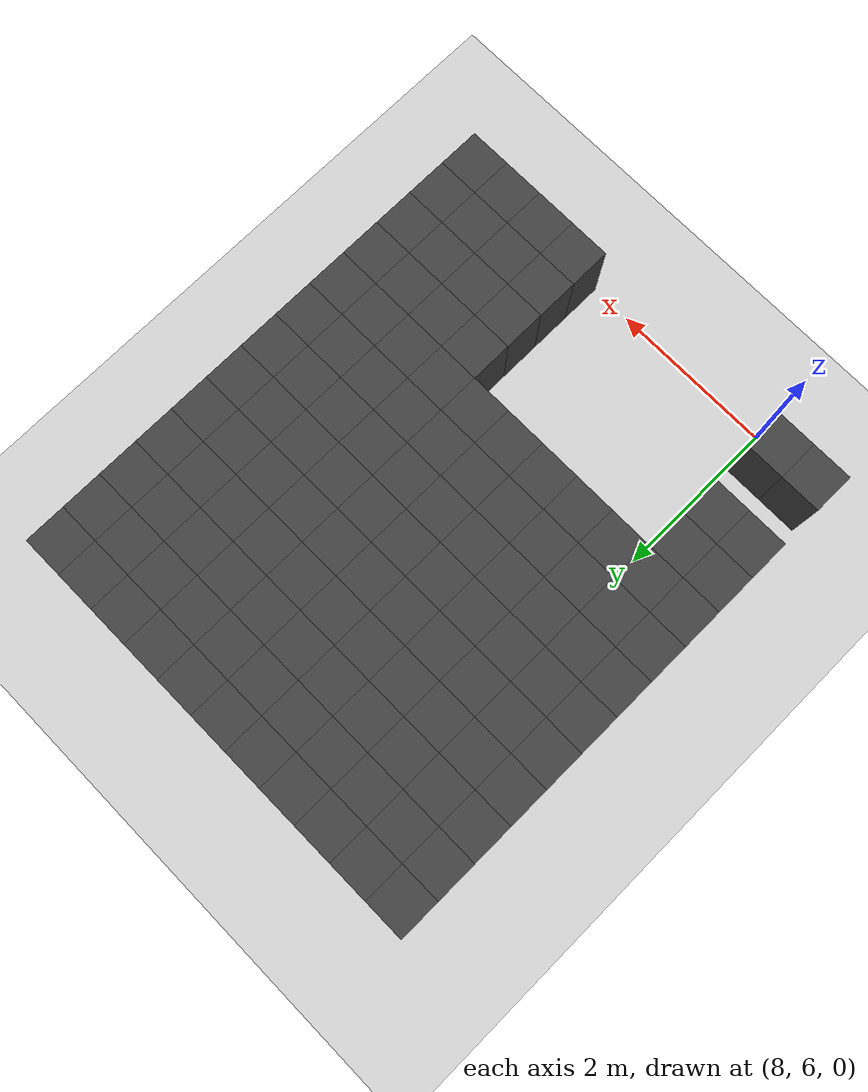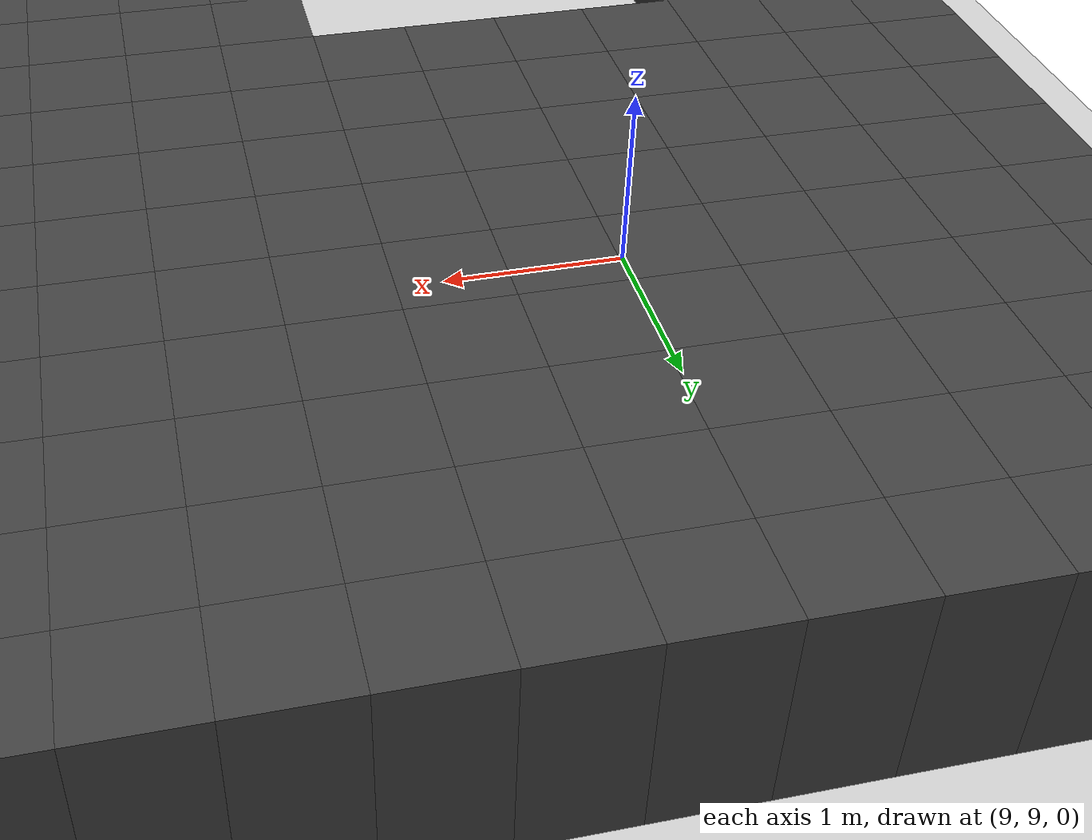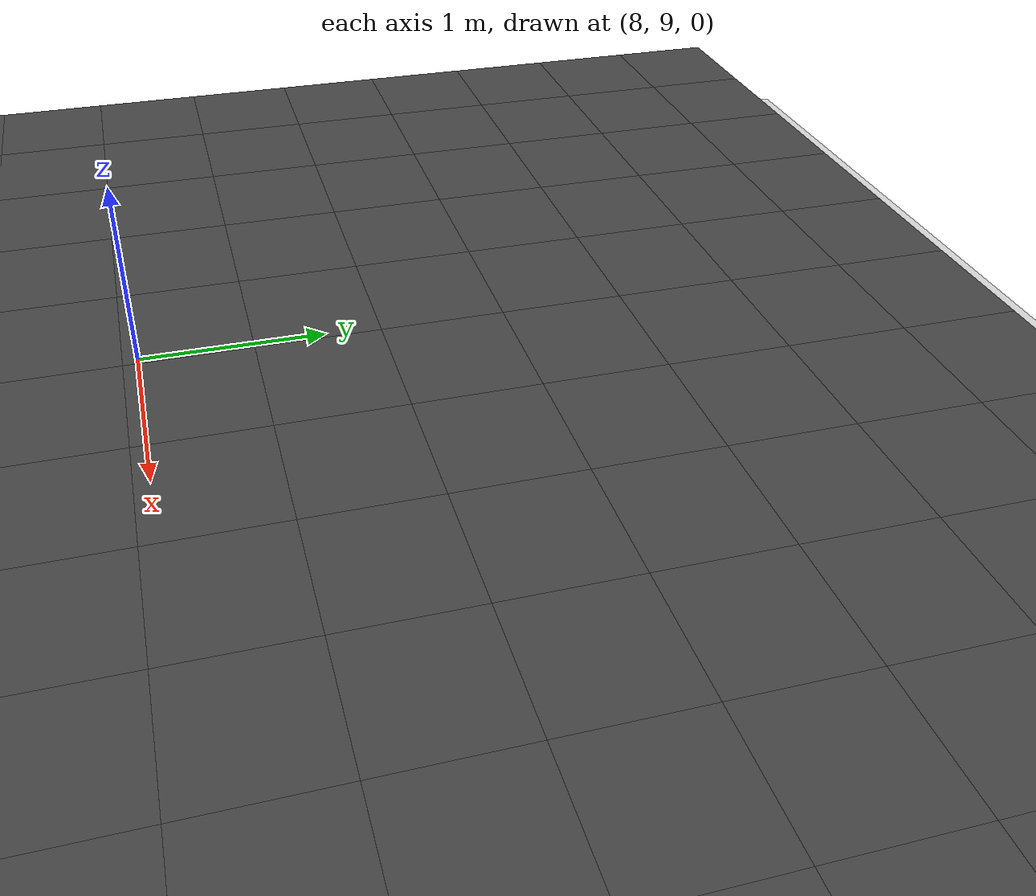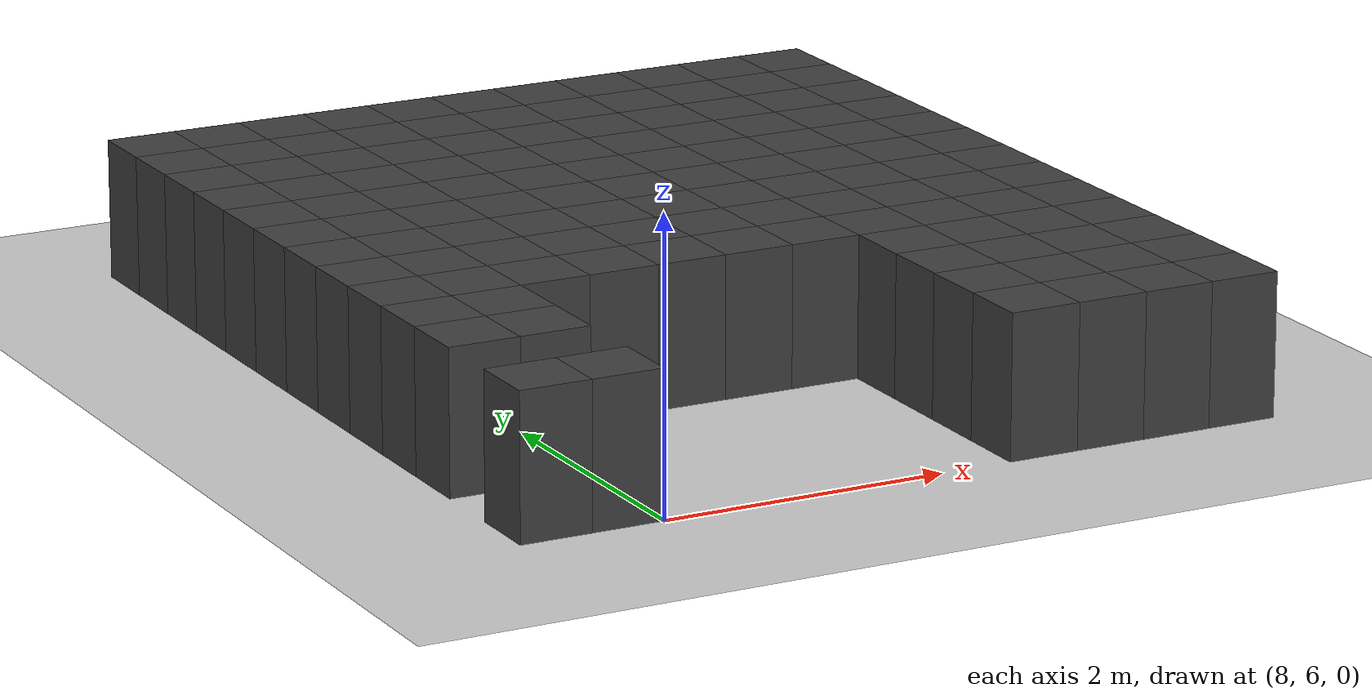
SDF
<sdf version="1.7">
 <world name="map_14510">
  <model name="ground_plane">
   <static>true</static>
   <link name="link">
    <collision name="collision">
     <geometry><plane><normal>0 0 1</normal><size>200 200</size></plane></geometry>
    </collision>
    <visual name="visual">
     <geometry><plane><normal>0 0 1</normal><size>200 200</size></plane></geometry>
     <material><ambient>0.8 0.8 0.8 1</ambient><diffuse>0.8 0.8 0.8 1</diffuse></material>
    </visual>
   </link>
  </model>
  <model name="maze_environment">
   <static>true</static>
   <link name="wall_39">
    <pose>7.250 12.250 0.500 0 0 0</pose>
    <collision name="col"><geometry><box><size>0.5 0.5 1.0</size></box></geometry></collision>
    <visual name="vis">
     <geometry><box><size>0.5 0.5 1.0</size></box></geometry>
     <material><ambient>0.15 0.15 0.15 1</ambient><diffuse>0.25 0.25 0.25 1</diffuse></material>
    </visual>
   </link>
   <link name="wall_40">
    <pose>7.750 12.250 0.500 0 0 0</pose>
    <collision name="col"><geometry><box><size>0.5 0.5 1.0</size></box></geometry></collision>
    <visual name="vis">
     <geometry><box><size>0.5 0.5 1.0</size></box></geometry>
     <material><ambient>0.15 0.15 0.15 1</ambient><diffuse>0.25 0.25 0.25 1</diffuse></material>
    </visual>
   </link>
   <link name="wall_41">
    <pose>8.250 12.250 0.500 0 0 0</pose>
    <collision name="col"><geometry><box><size>0.5 0.5 1.0</size></box></geometry></collision>
    <visual name="vis">
     <geometry><box><size>0.5 0.5 1.0</size></box></geometry>
     <material><ambient>0.15 0.15 0.15 1</ambient><diffuse>0.25 0.25 0.25 1</diffuse></material>
    </visual>
   </link>
   <link name="wall_42">
    <pose>8.750 12.250 0.500 0 0 0</pose>
    <collision name="col"><geometry><box><size>0.5 0.5 1.0</size></box></geometry></collision>
    <visual name="vis">
     <geometry><box><size>0.5 0.5 1.0</size></box></geometry>
     <material><ambient>0.15 0.15 0.15 1</ambient><diffuse>0.25 0.25 0.25 1</diffuse></material>
    </visual>
   </link>
   <link name="wall_43">
    <pose>9.250 12.250 0.500 0 0 0</pose>
    <collision name="col"><geometry><box><size>0.5 0.5 1.0</size></box></geometry></collision>
    <visual name="vis">
     <geometry><box><size>0.5 0.5 1.0</size></box></geometry>
     <material><ambient>0.15 0.15 0.15 1</ambient><diffuse>0.25 0.25 0.25 1</diffuse></material>
    </visual>
   </link>
   <link name="wall_44">
    <pose>9.750 12.250 0.500 0 0 0</pose>
    <collision name="col"><geometry><box><size>0.5 0.5 1.0</size></box></geometry></collision>
    <visual name="vis">
     <geometry><box><size>0.5 0.5 1.0</size></box></geometry>
     <material><ambient>0.15 0.15 0.15 1</ambient><diffuse>0.25 0.25 0.25 1</diffuse></material>
    </visual>
   </link>
   <link name="wall_45">
    <pose>10.250 12.250 0.500 0 0 0</pose>
    <collision name="col"><geometry><box><size>0.5 0.5 1.0</size></box></geometry></collision>
    <visual name="vis">
     <geometry><box><size>0.5 0.5 1.0</size></box></geometry>
     <material><ambient>0.15 0.15 0.15 1</ambient><diffuse>0.25 0.25 0.25 1</diffuse></material>
    </visual>
   </link>
   <link name="wall_46">
    <pose>10.750 12.250 0.500 0 0 0</pose>
    <collision name="col"><geometry><box><size>0.5 0.5 1.0</size></box></geometry></collision>
    <visual name="vis">
     <geometry><box><size>0.5 0.5 1.0</size></box></geometry>
     <material><ambient>0.15 0.15 0.15 1</ambient><diffuse>0.25 0.25 0.25 1</diffuse></material>
    </visual>
   </link>
   <link name="wall_47">
    <pose>11.250 12.250 0.500 0 0 0</pose>
    <collision name="col"><geometry><box><size>0.5 0.5 1.0</size></box></geometry></collision>
    <visual name="vis">
     <geometry><box><size>0.5 0.5 1.0</size></box></geometry>
     <material><ambient>0.15 0.15 0.15 1</ambient><diffuse>0.25 0.25 0.25 1</diffuse></material>
    </visual>
   </link>
   <link name="wall_48">
    <pose>11.750 12.250 0.500 0 0 0</pose>
    <collision name="col"><geometry><box><size>0.5 0.5 1.0</size></box></geometry></collision>
    <visual name="vis">
     <geometry><box><size>0.5 0.5 1.0</size></box></geometry>
     <material><ambient>0.15 0.15 0.15 1</ambient><diffuse>0.25 0.25 0.25 1</diffuse></material>
    </visual>
   </link>
   <link name="wall_49">
    <pose>12.250 12.250 0.500 0 0 0</pose>
    <collision name="col"><geometry><box><size>0.5 0.5 1.0</size></box></geometry></collision>
    <visual name="vis">
     <geometry><box><size>0.5 0.5 1.0</size></box></geometry>
     <material><ambient>0.15 0.15 0.15 1</ambient><diffuse>0.25 0.25 0.25 1</diffuse></material>
    </visual>
   </link>
   <link name="wall_86">
    <pose>7.250 11.750 0.500 0 0 0</pose>
    <collision name="col"><geometry><box><size>0.5 0.5 1.0</size></box></geometry></collision>
    <visual name="vis">
     <geometry><box><size>0.5 0.5 1.0</size></box></geometry>
     <material><ambient>0.15 0.15 0.15 1</ambient><diffuse>0.25 0.25 0.25 1</diffuse></material>
    </visual>
   </link>
   <link name="wall_87">
    <pose>7.750 11.750 0.500 0 0 0</pose>
    <collision name="col"><geometry><box><size>0.5 0.5 1.0</size></box></geometry></collision>
    <visual name="vis">
     <geometry><box><size>0.5 0.5 1.0</size></box></geometry>
     <material><ambient>0.15 0.15 0.15 1</ambient><diffuse>0.25 0.25 0.25 1</diffuse></material>
    </visual>
   </link>
   <link name="wall_88">
    <pose>8.250 11.750 0.500 0 0 0</pose>
    <collision name="col"><geometry><box><size>0.5 0.5 1.0</size></box></geometry></collision>
    <visual name="vis">
     <geometry><box><size>0.5 0.5 1.0</size></box></geometry>
     <material><ambient>0.15 0.15 0.15 1</ambient><diffuse>0.25 0.25 0.25 1</diffuse></material>
    </visual>
   </link>
   <link name="wall_89">
    <pose>8.750 11.750 0.500 0 0 0</pose>
    <collision name="col"><geometry><box><size>0.5 0.5 1.0</size></box></geometry></collision>
    <visual name="vis">
     <geometry><box><size>0.5 0.5 1.0</size></box></geometry>
     <material><ambient>0.15 0.15 0.15 1</ambient><diffuse>0.25 0.25 0.25 1</diffuse></material>
    </visual>
   </link>
   <link name="wall_90">
    <pose>9.250 11.750 0.500 0 0 0</pose>
    <collision name="col"><geometry><box><size>0.5 0.5 1.0</size></box></geometry></collision>
    <visual name="vis">
     <geometry><box><size>0.5 0.5 1.0</size></box></geometry>
     <material><ambient>0.15 0.15 0.15 1</ambient><diffuse>0.25 0.25 0.25 1</diffuse></material>
    </visual>
   </link>
   <link name="wall_91">
    <pose>9.750 11.750 0.500 0 0 0</pose>
    <collision name="col"><geometry><box><size>0.5 0.5 1.0</size></box></geometry></collision>
    <visual name="vis">
     <geometry><box><size>0.5 0.5 1.0</size></box></geometry>
     <material><ambient>0.15 0.15 0.15 1</ambient><diffuse>0.25 0.25 0.25 1</diffuse></material>
    </visual>
   </link>
   <link name="wall_92">
    <pose>10.250 11.750 0.500 0 0 0</pose>
    <collision name="col"><geometry><box><size>0.5 0.5 1.0</size></box></geometry></collision>
    <visual name="vis">
     <geometry><box><size>0.5 0.5 1.0</size></box></geometry>
     <material><ambient>0.15 0.15 0.15 1</ambient><diffuse>0.25 0.25 0.25 1</diffuse></material>
    </visual>
   </link>
   <link name="wall_93">
    <pose>10.750 11.750 0.500 0 0 0</pose>
    <collision name="col"><geometry><box><size>0.5 0.5 1.0</size></box></geometry></collision>
    <visual name="vis">
     <geometry><box><size>0.5 0.5 1.0</size></box></geometry>
     <material><ambient>0.15 0.15 0.15 1</ambient><diffuse>0.25 0.25 0.25 1</diffuse></material>
    </visual>
   </link>
   <link name="wall_94">
    <pose>11.250 11.750 0.500 0 0 0</pose>
    <collision name="col"><geometry><box><size>0.5 0.5 1.0</size></box></geometry></collision>
    <visual name="vis">
     <geometry><box><size>0.5 0.5 1.0</size></box></geometry>
     <material><ambient>0.15 0.15 0.15 1</ambient><diffuse>0.25 0.25 0.25 1</diffuse></material>
    </visual>
   </link>
   <link name="wall_95">
    <pose>11.750 11.750 0.500 0 0 0</pose>
    <collision name="col"><geometry><box><size>0.5 0.5 1.0</size></box></geometry></collision>
    <visual name="vis">
     <geometry><box><size>0.5 0.5 1.0</size></box></geometry>
     <material><ambient>0.15 0.15 0.15 1</ambient><diffuse>0.25 0.25 0.25 1</diffuse></material>
    </visual>
   </link>
   <link name="wall_96">
    <pose>12.250 11.750 0.500 0 0 0</pose>
    <collision name="col"><geometry><box><size>0.5 0.5 1.0</size></box></geometry></collision>
    <visual name="vis">
     <geometry><box><size>0.5 0.5 1.0</size></box></geometry>
     <material><ambient>0.15 0.15 0.15 1</ambient><diffuse>0.25 0.25 0.25 1</diffuse></material>
    </visual>
   </link>
   <link name="wall_133">
    <pose>7.250 11.250 0.500 0 0 0</pose>
    <collision name="col"><geometry><box><size>0.5 0.5 1.0</size></box></geometry></collision>
    <visual name="vis">
     <geometry><box><size>0.5 0.5 1.0</size></box></geometry>
     <material><ambient>0.15 0.15 0.15 1</ambient><diffuse>0.25 0.25 0.25 1</diffuse></material>
    </visual>
   </link>
   <link name="wall_134">
    <pose>7.750 11.250 0.500 0 0 0</pose>
    <collision name="col"><geometry><box><size>0.5 0.5 1.0</size></box></geometry></collision>
    <visual name="vis">
     <geometry><box><size>0.5 0.5 1.0</size></box></geometry>
     <material><ambient>0.15 0.15 0.15 1</ambient><diffuse>0.25 0.25 0.25 1</diffuse></material>
    </visual>
   </link>
   <link name="wall_135">
    <pose>8.250 11.250 0.500 0 0 0</pose>
    <collision name="col"><geometry><box><size>0.5 0.5 1.0</size></box></geometry></collision>
    <visual name="vis">
     <geometry><box><size>0.5 0.5 1.0</size></box></geometry>
     <material><ambient>0.15 0.15 0.15 1</ambient><diffuse>0.25 0.25 0.25 1</diffuse></material>
    </visual>
   </link>
   <link name="wall_136">
    <pose>8.750 11.250 0.500 0 0 0</pose>
    <collision name="col"><geometry><box><size>0.5 0.5 1.0</size></box></geometry></collision>
    <visual name="vis">
     <geometry><box><size>0.5 0.5 1.0</size></box></geometry>
     <material><ambient>0.15 0.15 0.15 1</ambient><diffuse>0.25 0.25 0.25 1</diffuse></material>
    </visual>
   </link>
   <link name="wall_137">
    <pose>9.250 11.250 0.500 0 0 0</pose>
    <collision name="col"><geometry><box><size>0.5 0.5 1.0</size></box></geometry></collision>
    <visual name="vis">
     <geometry><box><size>0.5 0.5 1.0</size></box></geometry>
     <material><ambient>0.15 0.15 0.15 1</ambient><diffuse>0.25 0.25 0.25 1</diffuse></material>
    </visual>
   </link>
   <link name="wall_138">
    <pose>9.750 11.250 0.500 0 0 0</pose>
    <collision name="col"><geometry><box><size>0.5 0.5 1.0</size></box></geometry></collision>
    <visual name="vis">
     <geometry><box><size>0.5 0.5 1.0</size></box></geometry>
     <material><ambient>0.15 0.15 0.15 1</ambient><diffuse>0.25 0.25 0.25 1</diffuse></material>
    </visual>
   </link>
   <link name="wall_139">
    <pose>10.250 11.250 0.500 0 0 0</pose>
    <collision name="col"><geometry><box><size>0.5 0.5 1.0</size></box></geometry></collision>
    <visual name="vis">
     <geometry><box><size>0.5 0.5 1.0</size></box></geometry>
     <material><ambient>0.15 0.15 0.15 1</ambient><diffuse>0.25 0.25 0.25 1</diffuse></material>
    </visual>
   </link>
   <link name="wall_140">
    <pose>10.750 11.250 0.500 0 0 0</pose>
    <collision name="col"><geometry><box><size>0.5 0.5 1.0</size></box></geometry></collision>
    <visual name="vis">
     <geometry><box><size>0.5 0.5 1.0</size></box></geometry>
     <material><ambient>0.15 0.15 0.15 1</ambient><diffuse>0.25 0.25 0.25 1</diffuse></material>
    </visual>
   </link>
   <link name="wall_141">
    <pose>11.250 11.250 0.500 0 0 0</pose>
    <collision name="col"><geometry><box><size>0.5 0.5 1.0</size></box></geometry></collision>
    <visual name="vis">
     <geometry><box><size>0.5 0.5 1.0</size></box></geometry>
     <material><ambient>0.15 0.15 0.15 1</ambient><diffuse>0.25 0.25 0.25 1</diffuse></material>
    </visual>
   </link>
   <link name="wall_142">
    <pose>11.750 11.250 0.500 0 0 0</pose>
    <collision name="col"><geometry><box><size>0.5 0.5 1.0</size></box></geometry></collision>
    <visual name="vis">
     <geometry><box><size>0.5 0.5 1.0</size></box></geometry>
     <material><ambient>0.15 0.15 0.15 1</ambient><diffuse>0.25 0.25 0.25 1</diffuse></material>
    </visual>
   </link>
   <link name="wall_143">
    <pose>12.250 11.250 0.500 0 0 0</pose>
    <collision name="col"><geometry><box><size>0.5 0.5 1.0</size></box></geometry></collision>
    <visual name="vis">
     <geometry><box><size>0.5 0.5 1.0</size></box></geometry>
     <material><ambient>0.15 0.15 0.15 1</ambient><diffuse>0.25 0.25 0.25 1</diffuse></material>
    </visual>
   </link>
   <link name="wall_170">
    <pose>7.250 10.750 0.500 0 0 0</pose>
    <collision name="col"><geometry><box><size>0.5 0.5 1.0</size></box></geometry></collision>
    <visual name="vis">
     <geometry><box><size>0.5 0.5 1.0</size></box></geometry>
     <material><ambient>0.15 0.15 0.15 1</ambient><diffuse>0.25 0.25 0.25 1</diffuse></material>
    </visual>
   </link>
   <link name="wall_171">
    <pose>7.750 10.750 0.500 0 0 0</pose>
    <collision name="col"><geometry><box><size>0.5 0.5 1.0</size></box></geometry></collision>
    <visual name="vis">
     <geometry><box><size>0.5 0.5 1.0</size></box></geometry>
     <material><ambient>0.15 0.15 0.15 1</ambient><diffuse>0.25 0.25 0.25 1</diffuse></material>
    </visual>
   </link>
   <link name="wall_172">
    <pose>8.250 10.750 0.500 0 0 0</pose>
    <collision name="col"><geometry><box><size>0.5 0.5 1.0</size></box></geometry></collision>
    <visual name="vis">
     <geometry><box><size>0.5 0.5 1.0</size></box></geometry>
     <material><ambient>0.15 0.15 0.15 1</ambient><diffuse>0.25 0.25 0.25 1</diffuse></material>
    </visual>
   </link>
   <link name="wall_173">
    <pose>8.750 10.750 0.500 0 0 0</pose>
    <collision name="col"><geometry><box><size>0.5 0.5 1.0</size></box></geometry></collision>
    <visual name="vis">
     <geometry><box><size>0.5 0.5 1.0</size></box></geometry>
     <material><ambient>0.15 0.15 0.15 1</ambient><diffuse>0.25 0.25 0.25 1</diffuse></material>
    </visual>
   </link>
   <link name="wall_174">
    <pose>9.250 10.750 0.500 0 0 0</pose>
    <collision name="col"><geometry><box><size>0.5 0.5 1.0</size></box></geometry></collision>
    <visual name="vis">
     <geometry><box><size>0.5 0.5 1.0</size></box></geometry>
     <material><ambient>0.15 0.15 0.15 1</ambient><diffuse>0.25 0.25 0.25 1</diffuse></material>
    </visual>
   </link>
   <link name="wall_175">
    <pose>9.750 10.750 0.500 0 0 0</pose>
    <collision name="col"><geometry><box><size>0.5 0.5 1.0</size></box></geometry></collision>
    <visual name="vis">
     <geometry><box><size>0.5 0.5 1.0</size></box></geometry>
     <material><ambient>0.15 0.15 0.15 1</ambient><diffuse>0.25 0.25 0.25 1</diffuse></material>
    </visual>
   </link>
   <link name="wall_176">
    <pose>10.250 10.750 0.500 0 0 0</pose>
    <collision name="col"><geometry><box><size>0.5 0.5 1.0</size></box></geometry></collision>
    <visual name="vis">
     <geometry><box><size>0.5 0.5 1.0</size></box></geometry>
     <material><ambient>0.15 0.15 0.15 1</ambient><diffuse>0.25 0.25 0.25 1</diffuse></material>
    </visual>
   </link>
   <link name="wall_177">
    <pose>10.750 10.750 0.500 0 0 0</pose>
    <collision name="col"><geometry><box><size>0.5 0.5 1.0</size></box></geometry></collision>
    <visual name="vis">
     <geometry><box><size>0.5 0.5 1.0</size></box></geometry>
     <material><ambient>0.15 0.15 0.15 1</ambient><diffuse>0.25 0.25 0.25 1</diffuse></material>
    </visual>
   </link>
   <link name="wall_178">
    <pose>11.250 10.750 0.500 0 0 0</pose>
    <collision name="col"><geometry><box><size>0.5 0.5 1.0</size></box></geometry></collision>
    <visual name="vis">
     <geometry><box><size>0.5 0.5 1.0</size></box></geometry>
     <material><ambient>0.15 0.15 0.15 1</ambient><diffuse>0.25 0.25 0.25 1</diffuse></material>
    </visual>
   </link>
   <link name="wall_179">
    <pose>11.750 10.750 0.500 0 0 0</pose>
    <collision name="col"><geometry><box><size>0.5 0.5 1.0</size></box></geometry></collision>
    <visual name="vis">
     <geometry><box><size>0.5 0.5 1.0</size></box></geometry>
     <material><ambient>0.15 0.15 0.15 1</ambient><diffuse>0.25 0.25 0.25 1</diffuse></material>
    </visual>
   </link>
   <link name="wall_180">
    <pose>12.250 10.750 0.500 0 0 0</pose>
    <collision name="col"><geometry><box><size>0.5 0.5 1.0</size></box></geometry></collision>
    <visual name="vis">
     <geometry><box><size>0.5 0.5 1.0</size></box></geometry>
     <material><ambient>0.15 0.15 0.15 1</ambient><diffuse>0.25 0.25 0.25 1</diffuse></material>
    </visual>
   </link>
   <link name="wall_209">
    <pose>7.250 10.250 0.500 0 0 0</pose>
    <collision name="col"><geometry><box><size>0.5 0.5 1.0</size></box></geometry></collision>
    <visual name="vis">
     <geometry><box><size>0.5 0.5 1.0</size></box></geometry>
     <material><ambient>0.15 0.15 0.15 1</ambient><diffuse>0.25 0.25 0.25 1</diffuse></material>
    </visual>
   </link>
   <link name="wall_210">
    <pose>7.750 10.250 0.500 0 0 0</pose>
    <collision name="col"><geometry><box><size>0.5 0.5 1.0</size></box></geometry></collision>
    <visual name="vis">
     <geometry><box><size>0.5 0.5 1.0</size></box></geometry>
     <material><ambient>0.15 0.15 0.15 1</ambient><diffuse>0.25 0.25 0.25 1</diffuse></material>
    </visual>
   </link>
   <link name="wall_211">
    <pose>8.250 10.250 0.500 0 0 0</pose>
    <collision name="col"><geometry><box><size>0.5 0.5 1.0</size></box></geometry></collision>
    <visual name="vis">
     <geometry><box><size>0.5 0.5 1.0</size></box></geometry>
     <material><ambient>0.15 0.15 0.15 1</ambient><diffuse>0.25 0.25 0.25 1</diffuse></material>
    </visual>
   </link>
   <link name="wall_212">
    <pose>8.750 10.250 0.500 0 0 0</pose>
    <collision name="col"><geometry><box><size>0.5 0.5 1.0</size></box></geometry></collision>
    <visual name="vis">
     <geometry><box><size>0.5 0.5 1.0</size></box></geometry>
     <material><ambient>0.15 0.15 0.15 1</ambient><diffuse>0.25 0.25 0.25 1</diffuse></material>
    </visual>
   </link>
   <link name="wall_213">
    <pose>9.250 10.250 0.500 0 0 0</pose>
    <collision name="col"><geometry><box><size>0.5 0.5 1.0</size></box></geometry></collision>
    <visual name="vis">
     <geometry><box><size>0.5 0.5 1.0</size></box></geometry>
     <material><ambient>0.15 0.15 0.15 1</ambient><diffuse>0.25 0.25 0.25 1</diffuse></material>
    </visual>
   </link>
   <link name="wall_214">
    <pose>9.750 10.250 0.500 0 0 0</pose>
    <collision name="col"><geometry><box><size>0.5 0.5 1.0</size></box></geometry></collision>
    <visual name="vis">
     <geometry><box><size>0.5 0.5 1.0</size></box></geometry>
     <material><ambient>0.15 0.15 0.15 1</ambient><diffuse>0.25 0.25 0.25 1</diffuse></material>
    </visual>
   </link>
   <link name="wall_215">
    <pose>10.250 10.250 0.500 0 0 0</pose>
    <collision name="col"><geometry><box><size>0.5 0.5 1.0</size></box></geometry></collision>
    <visual name="vis">
     <geometry><box><size>0.5 0.5 1.0</size></box></geometry>
     <material><ambient>0.15 0.15 0.15 1</ambient><diffuse>0.25 0.25 0.25 1</diffuse></material>
    </visual>
   </link>
   <link name="wall_216">
    <pose>10.750 10.250 0.500 0 0 0</pose>
    <collision name="col"><geometry><box><size>0.5 0.5 1.0</size></box></geometry></collision>
    <visual name="vis">
     <geometry><box><size>0.5 0.5 1.0</size></box></geometry>
     <material><ambient>0.15 0.15 0.15 1</ambient><diffuse>0.25 0.25 0.25 1</diffuse></material>
    </visual>
   </link>
   <link name="wall_217">
    <pose>11.250 10.250 0.500 0 0 0</pose>
    <collision name="col"><geometry><box><size>0.5 0.5 1.0</size></box></geometry></collision>
    <visual name="vis">
     <geometry><box><size>0.5 0.5 1.0</size></box></geometry>
     <material><ambient>0.15 0.15 0.15 1</ambient><diffuse>0.25 0.25 0.25 1</diffuse></material>
    </visual>
   </link>
   <link name="wall_218">
    <pose>11.750 10.250 0.500 0 0 0</pose>
    <collision name="col"><geometry><box><size>0.5 0.5 1.0</size></box></geometry></collision>
    <visual name="vis">
     <geometry><box><size>0.5 0.5 1.0</size></box></geometry>
     <material><ambient>0.15 0.15 0.15 1</ambient><diffuse>0.25 0.25 0.25 1</diffuse></material>
    </visual>
   </link>
   <link name="wall_219">
    <pose>12.250 10.250 0.500 0 0 0</pose>
    <collision name="col"><geometry><box><size>0.5 0.5 1.0</size></box></geometry></collision>
    <visual name="vis">
     <geometry><box><size>0.5 0.5 1.0</size></box></geometry>
     <material><ambient>0.15 0.15 0.15 1</ambient><diffuse>0.25 0.25 0.25 1</diffuse></material>
    </visual>
   </link>
   <link name="wall_241">
    <pose>7.250 9.750 0.500 0 0 0</pose>
    <collision name="col"><geometry><box><size>0.5 0.5 1.0</size></box></geometry></collision>
    <visual name="vis">
     <geometry><box><size>0.5 0.5 1.0</size></box></geometry>
     <material><ambient>0.15 0.15 0.15 1</ambient><diffuse>0.25 0.25 0.25 1</diffuse></material>
    </visual>
   </link>
   <link name="wall_242">
    <pose>7.750 9.750 0.500 0 0 0</pose>
    <collision name="col"><geometry><box><size>0.5 0.5 1.0</size></box></geometry></collision>
    <visual name="vis">
     <geometry><box><size>0.5 0.5 1.0</size></box></geometry>
     <material><ambient>0.15 0.15 0.15 1</ambient><diffuse>0.25 0.25 0.25 1</diffuse></material>
    </visual>
   </link>
   <link name="wall_243">
    <pose>8.250 9.750 0.500 0 0 0</pose>
    <collision name="col"><geometry><box><size>0.5 0.5 1.0</size></box></geometry></collision>
    <visual name="vis">
     <geometry><box><size>0.5 0.5 1.0</size></box></geometry>
     <material><ambient>0.15 0.15 0.15 1</ambient><diffuse>0.25 0.25 0.25 1</diffuse></material>
    </visual>
   </link>
   <link name="wall_244">
    <pose>8.750 9.750 0.500 0 0 0</pose>
    <collision name="col"><geometry><box><size>0.5 0.5 1.0</size></box></geometry></collision>
    <visual name="vis">
     <geometry><box><size>0.5 0.5 1.0</size></box></geometry>
     <material><ambient>0.15 0.15 0.15 1</ambient><diffuse>0.25 0.25 0.25 1</diffuse></material>
    </visual>
   </link>
   <link name="wall_245">
    <pose>9.250 9.750 0.500 0 0 0</pose>
    <collision name="col"><geometry><box><size>0.5 0.5 1.0</size></box></geometry></collision>
    <visual name="vis">
     <geometry><box><size>0.5 0.5 1.0</size></box></geometry>
     <material><ambient>0.15 0.15 0.15 1</ambient><diffuse>0.25 0.25 0.25 1</diffuse></material>
    </visual>
   </link>
   <link name="wall_246">
    <pose>9.750 9.750 0.500 0 0 0</pose>
    <collision name="col"><geometry><box><size>0.5 0.5 1.0</size></box></geometry></collision>
    <visual name="vis">
     <geometry><box><size>0.5 0.5 1.0</size></box></geometry>
     <material><ambient>0.15 0.15 0.15 1</ambient><diffuse>0.25 0.25 0.25 1</diffuse></material>
    </visual>
   </link>
   <link name="wall_247">
    <pose>10.250 9.750 0.500 0 0 0</pose>
    <collision name="col"><geometry><box><size>0.5 0.5 1.0</size></box></geometry></collision>
    <visual name="vis">
     <geometry><box><size>0.5 0.5 1.0</size></box></geometry>
     <material><ambient>0.15 0.15 0.15 1</ambient><diffuse>0.25 0.25 0.25 1</diffuse></material>
    </visual>
   </link>
   <link name="wall_248">
    <pose>10.750 9.750 0.500 0 0 0</pose>
    <collision name="col"><geometry><box><size>0.5 0.5 1.0</size></box></geometry></collision>
    <visual name="vis">
     <geometry><box><size>0.5 0.5 1.0</size></box></geometry>
     <material><ambient>0.15 0.15 0.15 1</ambient><diffuse>0.25 0.25 0.25 1</diffuse></material>
    </visual>
   </link>
   <link name="wall_249">
    <pose>11.250 9.750 0.500 0 0 0</pose>
    <collision name="col"><geometry><box><size>0.5 0.5 1.0</size></box></geometry></collision>
    <visual name="vis">
     <geometry><box><size>0.5 0.5 1.0</size></box></geometry>
     <material><ambient>0.15 0.15 0.15 1</ambient><diffuse>0.25 0.25 0.25 1</diffuse></material>
    </visual>
   </link>
   <link name="wall_250">
    <pose>11.750 9.750 0.500 0 0 0</pose>
    <collision name="col"><geometry><box><size>0.5 0.5 1.0</size></box></geometry></collision>
    <visual name="vis">
     <geometry><box><size>0.5 0.5 1.0</size></box></geometry>
     <material><ambient>0.15 0.15 0.15 1</ambient><diffuse>0.25 0.25 0.25 1</diffuse></material>
    </visual>
   </link>
   <link name="wall_251">
    <pose>12.250 9.750 0.500 0 0 0</pose>
    <collision name="col"><geometry><box><size>0.5 0.5 1.0</size></box></geometry></collision>
    <visual name="vis">
     <geometry><box><size>0.5 0.5 1.0</size></box></geometry>
     <material><ambient>0.15 0.15 0.15 1</ambient><diffuse>0.25 0.25 0.25 1</diffuse></material>
    </visual>
   </link>
   <link name="wall_262">
    <pose>7.250 9.250 0.500 0 0 0</pose>
    <collision name="col"><geometry><box><size>0.5 0.5 1.0</size></box></geometry></collision>
    <visual name="vis">
     <geometry><box><size>0.5 0.5 1.0</size></box></geometry>
     <material><ambient>0.15 0.15 0.15 1</ambient><diffuse>0.25 0.25 0.25 1</diffuse></material>
    </visual>
   </link>
   <link name="wall_263">
    <pose>7.750 9.250 0.500 0 0 0</pose>
    <collision name="col"><geometry><box><size>0.5 0.5 1.0</size></box></geometry></collision>
    <visual name="vis">
     <geometry><box><size>0.5 0.5 1.0</size></box></geometry>
     <material><ambient>0.15 0.15 0.15 1</ambient><diffuse>0.25 0.25 0.25 1</diffuse></material>
    </visual>
   </link>
   <link name="wall_264">
    <pose>8.250 9.250 0.500 0 0 0</pose>
    <collision name="col"><geometry><box><size>0.5 0.5 1.0</size></box></geometry></collision>
    <visual name="vis">
     <geometry><box><size>0.5 0.5 1.0</size></box></geometry>
     <material><ambient>0.15 0.15 0.15 1</ambient><diffuse>0.25 0.25 0.25 1</diffuse></material>
    </visual>
   </link>
   <link name="wall_265">
    <pose>8.750 9.250 0.500 0 0 0</pose>
    <collision name="col"><geometry><box><size>0.5 0.5 1.0</size></box></geometry></collision>
    <visual name="vis">
     <geometry><box><size>0.5 0.5 1.0</size></box></geometry>
     <material><ambient>0.15 0.15 0.15 1</ambient><diffuse>0.25 0.25 0.25 1</diffuse></material>
    </visual>
   </link>
   <link name="wall_266">
    <pose>9.250 9.250 0.500 0 0 0</pose>
    <collision name="col"><geometry><box><size>0.5 0.5 1.0</size></box></geometry></collision>
    <visual name="vis">
     <geometry><box><size>0.5 0.5 1.0</size></box></geometry>
     <material><ambient>0.15 0.15 0.15 1</ambient><diffuse>0.25 0.25 0.25 1</diffuse></material>
    </visual>
   </link>
   <link name="wall_267">
    <pose>9.750 9.250 0.500 0 0 0</pose>
    <collision name="col"><geometry><box><size>0.5 0.5 1.0</size></box></geometry></collision>
    <visual name="vis">
     <geometry><box><size>0.5 0.5 1.0</size></box></geometry>
     <material><ambient>0.15 0.15 0.15 1</ambient><diffuse>0.25 0.25 0.25 1</diffuse></material>
    </visual>
   </link>
   <link name="wall_268">
    <pose>10.250 9.250 0.500 0 0 0</pose>
    <collision name="col"><geometry><box><size>0.5 0.5 1.0</size></box></geometry></collision>
    <visual name="vis">
     <geometry><box><size>0.5 0.5 1.0</size></box></geometry>
     <material><ambient>0.15 0.15 0.15 1</ambient><diffuse>0.25 0.25 0.25 1</diffuse></material>
    </visual>
   </link>
   <link name="wall_269">
    <pose>10.750 9.250 0.500 0 0 0</pose>
    <collision name="col"><geometry><box><size>0.5 0.5 1.0</size></box></geometry></collision>
    <visual name="vis">
     <geometry><box><size>0.5 0.5 1.0</size></box></geometry>
     <material><ambient>0.15 0.15 0.15 1</ambient><diffuse>0.25 0.25 0.25 1</diffuse></material>
    </visual>
   </link>
   <link name="wall_270">
    <pose>11.250 9.250 0.500 0 0 0</pose>
    <collision name="col"><geometry><box><size>0.5 0.5 1.0</size></box></geometry></collision>
    <visual name="vis">
     <geometry><box><size>0.5 0.5 1.0</size></box></geometry>
     <material><ambient>0.15 0.15 0.15 1</ambient><diffuse>0.25 0.25 0.25 1</diffuse></material>
    </visual>
   </link>
   <link name="wall_271">
    <pose>11.750 9.250 0.500 0 0 0</pose>
    <collision name="col"><geometry><box><size>0.5 0.5 1.0</size></box></geometry></collision>
    <visual name="vis">
     <geometry><box><size>0.5 0.5 1.0</size></box></geometry>
     <material><ambient>0.15 0.15 0.15 1</ambient><diffuse>0.25 0.25 0.25 1</diffuse></material>
    </visual>
   </link>
   <link name="wall_272">
    <pose>12.250 9.250 0.500 0 0 0</pose>
    <collision name="col"><geometry><box><size>0.5 0.5 1.0</size></box></geometry></collision>
    <visual name="vis">
     <geometry><box><size>0.5 0.5 1.0</size></box></geometry>
     <material><ambient>0.15 0.15 0.15 1</ambient><diffuse>0.25 0.25 0.25 1</diffuse></material>
    </visual>
   </link>
   <link name="wall_295">
    <pose>7.250 8.750 0.500 0 0 0</pose>
    <collision name="col"><geometry><box><size>0.5 0.5 1.0</size></box></geometry></collision>
    <visual name="vis">
     <geometry><box><size>0.5 0.5 1.0</size></box></geometry>
     <material><ambient>0.15 0.15 0.15 1</ambient><diffuse>0.25 0.25 0.25 1</diffuse></material>
    </visual>
   </link>
   <link name="wall_296">
    <pose>7.750 8.750 0.500 0 0 0</pose>
    <collision name="col"><geometry><box><size>0.5 0.5 1.0</size></box></geometry></collision>
    <visual name="vis">
     <geometry><box><size>0.5 0.5 1.0</size></box></geometry>
     <material><ambient>0.15 0.15 0.15 1</ambient><diffuse>0.25 0.25 0.25 1</diffuse></material>
    </visual>
   </link>
   <link name="wall_297">
    <pose>8.250 8.750 0.500 0 0 0</pose>
    <collision name="col"><geometry><box><size>0.5 0.5 1.0</size></box></geometry></collision>
    <visual name="vis">
     <geometry><box><size>0.5 0.5 1.0</size></box></geometry>
     <material><ambient>0.15 0.15 0.15 1</ambient><diffuse>0.25 0.25 0.25 1</diffuse></material>
    </visual>
   </link>
   <link name="wall_298">
    <pose>8.750 8.750 0.500 0 0 0</pose>
    <collision name="col"><geometry><box><size>0.5 0.5 1.0</size></box></geometry></collision>
    <visual name="vis">
     <geometry><box><size>0.5 0.5 1.0</size></box></geometry>
     <material><ambient>0.15 0.15 0.15 1</ambient><diffuse>0.25 0.25 0.25 1</diffuse></material>
    </visual>
   </link>
   <link name="wall_299">
    <pose>9.250 8.750 0.500 0 0 0</pose>
    <collision name="col"><geometry><box><size>0.5 0.5 1.0</size></box></geometry></collision>
    <visual name="vis">
     <geometry><box><size>0.5 0.5 1.0</size></box></geometry>
     <material><ambient>0.15 0.15 0.15 1</ambient><diffuse>0.25 0.25 0.25 1</diffuse></material>
    </visual>
   </link>
   <link name="wall_300">
    <pose>9.750 8.750 0.500 0 0 0</pose>
    <collision name="col"><geometry><box><size>0.5 0.5 1.0</size></box></geometry></collision>
    <visual name="vis">
     <geometry><box><size>0.5 0.5 1.0</size></box></geometry>
     <material><ambient>0.15 0.15 0.15 1</ambient><diffuse>0.25 0.25 0.25 1</diffuse></material>
    </visual>
   </link>
   <link name="wall_301">
    <pose>10.250 8.750 0.500 0 0 0</pose>
    <collision name="col"><geometry><box><size>0.5 0.5 1.0</size></box></geometry></collision>
    <visual name="vis">
     <geometry><box><size>0.5 0.5 1.0</size></box></geometry>
     <material><ambient>0.15 0.15 0.15 1</ambient><diffuse>0.25 0.25 0.25 1</diffuse></material>
    </visual>
   </link>
   <link name="wall_302">
    <pose>10.750 8.750 0.500 0 0 0</pose>
    <collision name="col"><geometry><box><size>0.5 0.5 1.0</size></box></geometry></collision>
    <visual name="vis">
     <geometry><box><size>0.5 0.5 1.0</size></box></geometry>
     <material><ambient>0.15 0.15 0.15 1</ambient><diffuse>0.25 0.25 0.25 1</diffuse></material>
    </visual>
   </link>
   <link name="wall_303">
    <pose>11.250 8.750 0.500 0 0 0</pose>
    <collision name="col"><geometry><box><size>0.5 0.5 1.0</size></box></geometry></collision>
    <visual name="vis">
     <geometry><box><size>0.5 0.5 1.0</size></box></geometry>
     <material><ambient>0.15 0.15 0.15 1</ambient><diffuse>0.25 0.25 0.25 1</diffuse></material>
    </visual>
   </link>
   <link name="wall_304">
    <pose>11.750 8.750 0.500 0 0 0</pose>
    <collision name="col"><geometry><box><size>0.5 0.5 1.0</size></box></geometry></collision>
    <visual name="vis">
     <geometry><box><size>0.5 0.5 1.0</size></box></geometry>
     <material><ambient>0.15 0.15 0.15 1</ambient><diffuse>0.25 0.25 0.25 1</diffuse></material>
    </visual>
   </link>
   <link name="wall_305">
    <pose>12.250 8.750 0.500 0 0 0</pose>
    <collision name="col"><geometry><box><size>0.5 0.5 1.0</size></box></geometry></collision>
    <visual name="vis">
     <geometry><box><size>0.5 0.5 1.0</size></box></geometry>
     <material><ambient>0.15 0.15 0.15 1</ambient><diffuse>0.25 0.25 0.25 1</diffuse></material>
    </visual>
   </link>
   <link name="wall_328">
    <pose>7.250 8.250 0.500 0 0 0</pose>
    <collision name="col"><geometry><box><size>0.5 0.5 1.0</size></box></geometry></collision>
    <visual name="vis">
     <geometry><box><size>0.5 0.5 1.0</size></box></geometry>
     <material><ambient>0.15 0.15 0.15 1</ambient><diffuse>0.25 0.25 0.25 1</diffuse></material>
    </visual>
   </link>
   <link name="wall_329">
    <pose>7.750 8.250 0.500 0 0 0</pose>
    <collision name="col"><geometry><box><size>0.5 0.5 1.0</size></box></geometry></collision>
    <visual name="vis">
     <geometry><box><size>0.5 0.5 1.0</size></box></geometry>
     <material><ambient>0.15 0.15 0.15 1</ambient><diffuse>0.25 0.25 0.25 1</diffuse></material>
    </visual>
   </link>
   <link name="wall_330">
    <pose>8.250 8.250 0.500 0 0 0</pose>
    <collision name="col"><geometry><box><size>0.5 0.5 1.0</size></box></geometry></collision>
    <visual name="vis">
     <geometry><box><size>0.5 0.5 1.0</size></box></geometry>
     <material><ambient>0.15 0.15 0.15 1</ambient><diffuse>0.25 0.25 0.25 1</diffuse></material>
    </visual>
   </link>
   <link name="wall_331">
    <pose>8.750 8.250 0.500 0 0 0</pose>
    <collision name="col"><geometry><box><size>0.5 0.5 1.0</size></box></geometry></collision>
    <visual name="vis">
     <geometry><box><size>0.5 0.5 1.0</size></box></geometry>
     <material><ambient>0.15 0.15 0.15 1</ambient><diffuse>0.25 0.25 0.25 1</diffuse></material>
    </visual>
   </link>
   <link name="wall_332">
    <pose>9.250 8.250 0.500 0 0 0</pose>
    <collision name="col"><geometry><box><size>0.5 0.5 1.0</size></box></geometry></collision>
    <visual name="vis">
     <geometry><box><size>0.5 0.5 1.0</size></box></geometry>
     <material><ambient>0.15 0.15 0.15 1</ambient><diffuse>0.25 0.25 0.25 1</diffuse></material>
    </visual>
   </link>
   <link name="wall_333">
    <pose>9.750 8.250 0.500 0 0 0</pose>
    <collision name="col"><geometry><box><size>0.5 0.5 1.0</size></box></geometry></collision>
    <visual name="vis">
     <geometry><box><size>0.5 0.5 1.0</size></box></geometry>
     <material><ambient>0.15 0.15 0.15 1</ambient><diffuse>0.25 0.25 0.25 1</diffuse></material>
    </visual>
   </link>
   <link name="wall_334">
    <pose>10.250 8.250 0.500 0 0 0</pose>
    <collision name="col"><geometry><box><size>0.5 0.5 1.0</size></box></geometry></collision>
    <visual name="vis">
     <geometry><box><size>0.5 0.5 1.0</size></box></geometry>
     <material><ambient>0.15 0.15 0.15 1</ambient><diffuse>0.25 0.25 0.25 1</diffuse></material>
    </visual>
   </link>
   <link name="wall_335">
    <pose>10.750 8.250 0.500 0 0 0</pose>
    <collision name="col"><geometry><box><size>0.5 0.5 1.0</size></box></geometry></collision>
    <visual name="vis">
     <geometry><box><size>0.5 0.5 1.0</size></box></geometry>
     <material><ambient>0.15 0.15 0.15 1</ambient><diffuse>0.25 0.25 0.25 1</diffuse></material>
    </visual>
   </link>
   <link name="wall_336">
    <pose>11.250 8.250 0.500 0 0 0</pose>
    <collision name="col"><geometry><box><size>0.5 0.5 1.0</size></box></geometry></collision>
    <visual name="vis">
     <geometry><box><size>0.5 0.5 1.0</size></box></geometry>
     <material><ambient>0.15 0.15 0.15 1</ambient><diffuse>0.25 0.25 0.25 1</diffuse></material>
    </visual>
   </link>
   <link name="wall_337">
    <pose>11.750 8.250 0.500 0 0 0</pose>
    <collision name="col"><geometry><box><size>0.5 0.5 1.0</size></box></geometry></collision>
    <visual name="vis">
     <geometry><box><size>0.5 0.5 1.0</size></box></geometry>
     <material><ambient>0.15 0.15 0.15 1</ambient><diffuse>0.25 0.25 0.25 1</diffuse></material>
    </visual>
   </link>
   <link name="wall_338">
    <pose>12.250 8.250 0.500 0 0 0</pose>
    <collision name="col"><geometry><box><size>0.5 0.5 1.0</size></box></geometry></collision>
    <visual name="vis">
     <geometry><box><size>0.5 0.5 1.0</size></box></geometry>
     <material><ambient>0.15 0.15 0.15 1</ambient><diffuse>0.25 0.25 0.25 1</diffuse></material>
    </visual>
   </link>
   <link name="wall_359">
    <pose>7.250 7.750 0.500 0 0 0</pose>
    <collision name="col"><geometry><box><size>0.5 0.5 1.0</size></box></geometry></collision>
    <visual name="vis">
     <geometry><box><size>0.5 0.5 1.0</size></box></geometry>
     <material><ambient>0.15 0.15 0.15 1</ambient><diffuse>0.25 0.25 0.25 1</diffuse></material>
    </visual>
   </link>
   <link name="wall_360">
    <pose>7.750 7.750 0.500 0 0 0</pose>
    <collision name="col"><geometry><box><size>0.5 0.5 1.0</size></box></geometry></collision>
    <visual name="vis">
     <geometry><box><size>0.5 0.5 1.0</size></box></geometry>
     <material><ambient>0.15 0.15 0.15 1</ambient><diffuse>0.25 0.25 0.25 1</diffuse></material>
    </visual>
   </link>
   <link name="wall_361">
    <pose>10.750 7.750 0.500 0 0 0</pose>
    <collision name="col"><geometry><box><size>0.5 0.5 1.0</size></box></geometry></collision>
    <visual name="vis">
     <geometry><box><size>0.5 0.5 1.0</size></box></geometry>
     <material><ambient>0.15 0.15 0.15 1</ambient><diffuse>0.25 0.25 0.25 1</diffuse></material>
    </visual>
   </link>
   <link name="wall_362">
    <pose>11.250 7.750 0.500 0 0 0</pose>
    <collision name="col"><geometry><box><size>0.5 0.5 1.0</size></box></geometry></collision>
    <visual name="vis">
     <geometry><box><size>0.5 0.5 1.0</size></box></geometry>
     <material><ambient>0.15 0.15 0.15 1</ambient><diffuse>0.25 0.25 0.25 1</diffuse></material>
    </visual>
   </link>
   <link name="wall_363">
    <pose>11.750 7.750 0.500 0 0 0</pose>
    <collision name="col"><geometry><box><size>0.5 0.5 1.0</size></box></geometry></collision>
    <visual name="vis">
     <geometry><box><size>0.5 0.5 1.0</size></box></geometry>
     <material><ambient>0.15 0.15 0.15 1</ambient><diffuse>0.25 0.25 0.25 1</diffuse></material>
    </visual>
   </link>
   <link name="wall_364">
    <pose>12.250 7.750 0.500 0 0 0</pose>
    <collision name="col"><geometry><box><size>0.5 0.5 1.0</size></box></geometry></collision>
    <visual name="vis">
     <geometry><box><size>0.5 0.5 1.0</size></box></geometry>
     <material><ambient>0.15 0.15 0.15 1</ambient><diffuse>0.25 0.25 0.25 1</diffuse></material>
    </visual>
   </link>
   <link name="wall_384">
    <pose>7.250 7.250 0.500 0 0 0</pose>
    <collision name="col"><geometry><box><size>0.5 0.5 1.0</size></box></geometry></collision>
    <visual name="vis">
     <geometry><box><size>0.5 0.5 1.0</size></box></geometry>
     <material><ambient>0.15 0.15 0.15 1</ambient><diffuse>0.25 0.25 0.25 1</diffuse></material>
    </visual>
   </link>
   <link name="wall_385">
    <pose>7.750 7.250 0.500 0 0 0</pose>
    <collision name="col"><geometry><box><size>0.5 0.5 1.0</size></box></geometry></collision>
    <visual name="vis">
     <geometry><box><size>0.5 0.5 1.0</size></box></geometry>
     <material><ambient>0.15 0.15 0.15 1</ambient><diffuse>0.25 0.25 0.25 1</diffuse></material>
    </visual>
   </link>
   <link name="wall_386">
    <pose>10.750 7.250 0.500 0 0 0</pose>
    <collision name="col"><geometry><box><size>0.5 0.5 1.0</size></box></geometry></collision>
    <visual name="vis">
     <geometry><box><size>0.5 0.5 1.0</size></box></geometry>
     <material><ambient>0.15 0.15 0.15 1</ambient><diffuse>0.25 0.25 0.25 1</diffuse></material>
    </visual>
   </link>
   <link name="wall_387">
    <pose>11.250 7.250 0.500 0 0 0</pose>
    <collision name="col"><geometry><box><size>0.5 0.5 1.0</size></box></geometry></collision>
    <visual name="vis">
     <geometry><box><size>0.5 0.5 1.0</size></box></geometry>
     <material><ambient>0.15 0.15 0.15 1</ambient><diffuse>0.25 0.25 0.25 1</diffuse></material>
    </visual>
   </link>
   <link name="wall_388">
    <pose>11.750 7.250 0.500 0 0 0</pose>
    <collision name="col"><geometry><box><size>0.5 0.5 1.0</size></box></geometry></collision>
    <visual name="vis">
     <geometry><box><size>0.5 0.5 1.0</size></box></geometry>
     <material><ambient>0.15 0.15 0.15 1</ambient><diffuse>0.25 0.25 0.25 1</diffuse></material>
    </visual>
   </link>
   <link name="wall_389">
    <pose>12.250 7.250 0.500 0 0 0</pose>
    <collision name="col"><geometry><box><size>0.5 0.5 1.0</size></box></geometry></collision>
    <visual name="vis">
     <geometry><box><size>0.5 0.5 1.0</size></box></geometry>
     <material><ambient>0.15 0.15 0.15 1</ambient><diffuse>0.25 0.25 0.25 1</diffuse></material>
    </visual>
   </link>
   <link name="wall_399">
    <pose>10.750 6.750 0.500 0 0 0</pose>
    <collision name="col"><geometry><box><size>0.5 0.5 1.0</size></box></geometry></collision>
    <visual name="vis">
     <geometry><box><size>0.5 0.5 1.0</size></box></geometry>
     <material><ambient>0.15 0.15 0.15 1</ambient><diffuse>0.25 0.25 0.25 1</diffuse></material>
    </visual>
   </link>
   <link name="wall_400">
    <pose>11.250 6.750 0.500 0 0 0</pose>
    <collision name="col"><geometry><box><size>0.5 0.5 1.0</size></box></geometry></collision>
    <visual name="vis">
     <geometry><box><size>0.5 0.5 1.0</size></box></geometry>
     <material><ambient>0.15 0.15 0.15 1</ambient><diffuse>0.25 0.25 0.25 1</diffuse></material>
    </visual>
   </link>
   <link name="wall_401">
    <pose>11.750 6.750 0.500 0 0 0</pose>
    <collision name="col"><geometry><box><size>0.5 0.5 1.0</size></box></geometry></collision>
    <visual name="vis">
     <geometry><box><size>0.5 0.5 1.0</size></box></geometry>
     <material><ambient>0.15 0.15 0.15 1</ambient><diffuse>0.25 0.25 0.25 1</diffuse></material>
    </visual>
   </link>
   <link name="wall_402">
    <pose>12.250 6.750 0.500 0 0 0</pose>
    <collision name="col"><geometry><box><size>0.5 0.5 1.0</size></box></geometry></collision>
    <visual name="vis">
     <geometry><box><size>0.5 0.5 1.0</size></box></geometry>
     <material><ambient>0.15 0.15 0.15 1</ambient><diffuse>0.25 0.25 0.25 1</diffuse></material>
    </visual>
   </link>
   <link name="wall_417">
    <pose>7.250 6.250 0.500 0 0 0</pose>
    <collision name="col"><geometry><box><size>0.5 0.5 1.0</size></box></geometry></collision>
    <visual name="vis">
     <geometry><box><size>0.5 0.5 1.0</size></box></geometry>
     <material><ambient>0.15 0.15 0.15 1</ambient><diffuse>0.25 0.25 0.25 1</diffuse></material>
    </visual>
   </link>
   <link name="wall_418">
    <pose>7.750 6.250 0.500 0 0 0</pose>
    <collision name="col"><geometry><box><size>0.5 0.5 1.0</size></box></geometry></collision>
    <visual name="vis">
     <geometry><box><size>0.5 0.5 1.0</size></box></geometry>
     <material><ambient>0.15 0.15 0.15 1</ambient><diffuse>0.25 0.25 0.25 1</diffuse></material>
    </visual>
   </link>
   <link name="wall_419">
    <pose>10.750 6.250 0.500 0 0 0</pose>
    <collision name="col"><geometry><box><size>0.5 0.5 1.0</size></box></geometry></collision>
    <visual name="vis">
     <geometry><box><size>0.5 0.5 1.0</size></box></geometry>
     <material><ambient>0.15 0.15 0.15 1</ambient><diffuse>0.25 0.25 0.25 1</diffuse></material>
    </visual>
   </link>
   <link name="wall_420">
    <pose>11.250 6.250 0.500 0 0 0</pose>
    <collision name="col"><geometry><box><size>0.5 0.5 1.0</size></box></geometry></collision>
    <visual name="vis">
     <geometry><box><size>0.5 0.5 1.0</size></box></geometry>
     <material><ambient>0.15 0.15 0.15 1</ambient><diffuse>0.25 0.25 0.25 1</diffuse></material>
    </visual>
   </link>
   <link name="wall_421">
    <pose>11.750 6.250 0.500 0 0 0</pose>
    <collision name="col"><geometry><box><size>0.5 0.5 1.0</size></box></geometry></collision>
    <visual name="vis">
     <geometry><box><size>0.5 0.5 1.0</size></box></geometry>
     <material><ambient>0.15 0.15 0.15 1</ambient><diffuse>0.25 0.25 0.25 1</diffuse></material>
    </visual>
   </link>
   <link name="wall_422">
    <pose>12.250 6.250 0.500 0 0 0</pose>
    <collision name="col"><geometry><box><size>0.5 0.5 1.0</size></box></geometry></collision>
    <visual name="vis">
     <geometry><box><size>0.5 0.5 1.0</size></box></geometry>
     <material><ambient>0.15 0.15 0.15 1</ambient><diffuse>0.25 0.25 0.25 1</diffuse></material>
    </visual>
   </link>
  </model>
 </world>
</sdf>
